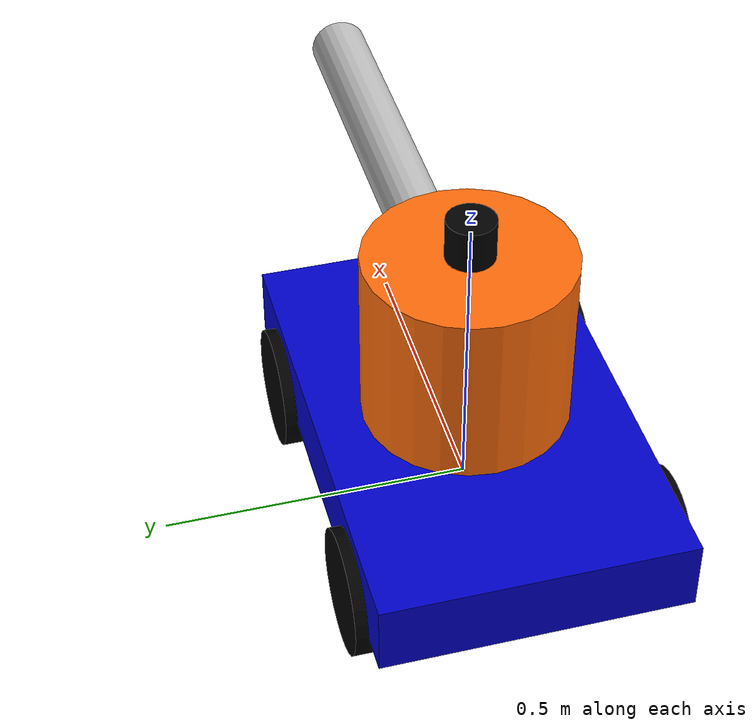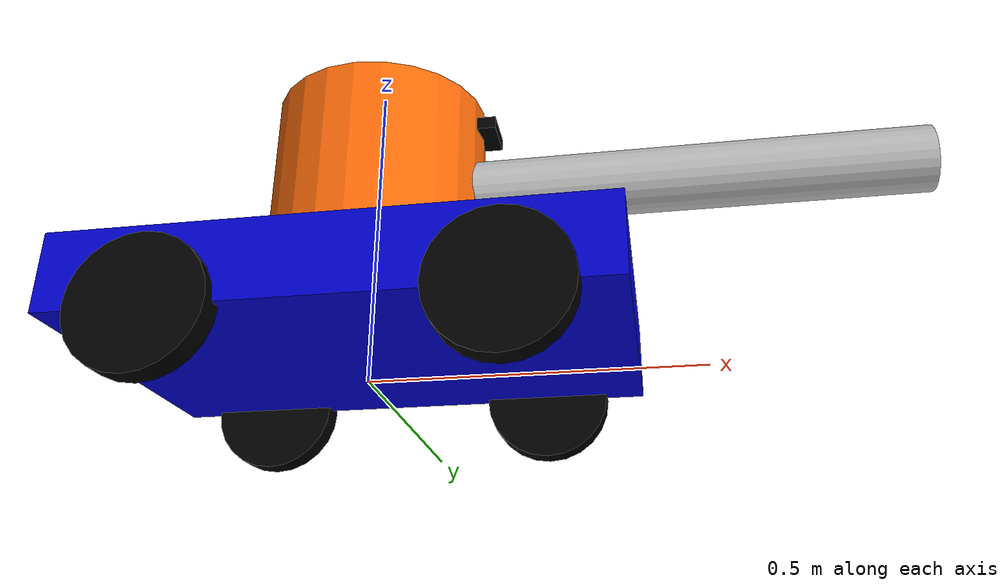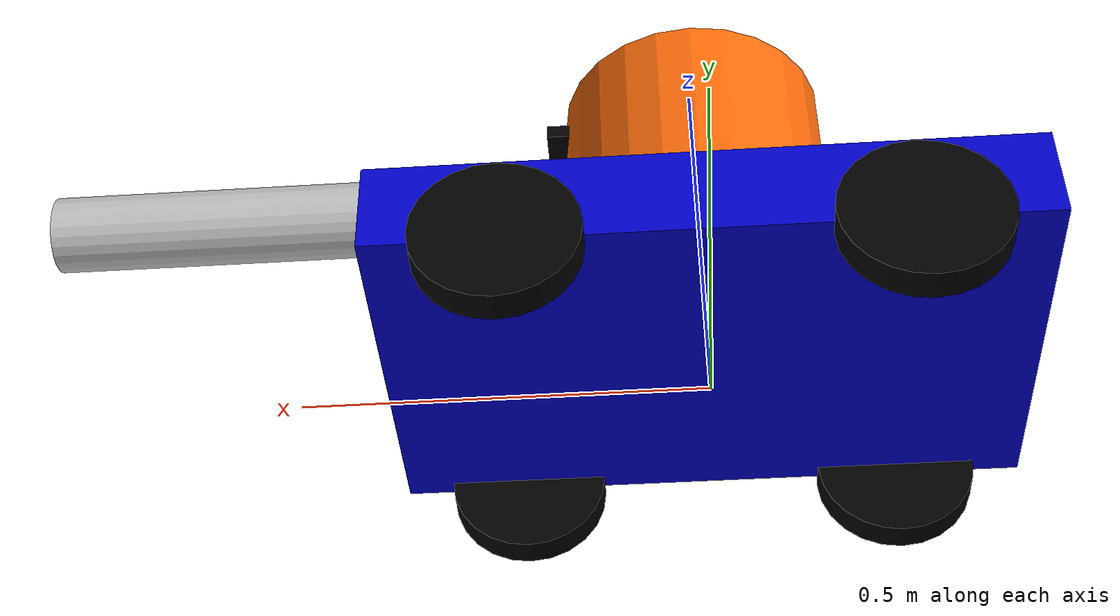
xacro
<?xml version="1.0"?>
<robot name="mbot" xmlns:xacro="http://www.ros.org/wiki/xacro">

  <xacro:include filename="$(find my_robot_gazebo)/urdf/inertia_matrix.xacro" />
  <xacro:include filename="$(find my_robot_gazebo)/urdf/robot_base_gazebo.xacro" />
  <xacro:include filename="$(find my_robot_gazebo)/urdf/camere.xacro" />
  <xacro:include filename="$(find my_robot_gazebo)/urdf/lidar.xacro" />
  <xacro:include filename="joint_transmission.xacro" />
  <xacro:include filename="robot_controller.xacro" />
</robot>

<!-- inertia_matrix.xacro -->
<robot name="inertia_matrix" xmlns:xacro="http://wiki.ros.org/xacro">
  <!-- Macro for inertia matrix -->
  <xacro:macro name="sphere_inertial_matrix" params="m r">
    <inertial>
      <mass value="${m}" />
      <inertia ixx="${2*m*r*r/5}" ixy="0" ixz="0" iyy="${2*m*r*r/5}" iyz="0" izz="${2*m*r*r/5}" />
    </inertial>
  </xacro:macro>

  <xacro:macro name="cylinder_inertial_matrix" params="m r h">
    <inertial>
      <mass value="${m}" />
      <inertia ixx="${m*(3*r*r+h*h)/12}" ixy="0" ixz="0" iyy="${m*(3*r*r+h*h)/12}" iyz="0" izz="${m*r*r/2}" />
    </inertial>
  </xacro:macro>

  <xacro:macro name="Box_inertial_matrix" params="m l w h">
    <inertial>
      <mass value="${m}" />
      <inertia ixx="${m*(h*h + l*l)/12}" ixy="0" ixz="0" iyy="${m*(w*w + l*l)/12}" iyz="0" izz="${m*(w*w + h*h)/12}" />
    </inertial>
  </xacro:macro>
</robot>

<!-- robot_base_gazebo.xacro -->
<robot name="my_robot" xmlns:xacro="http://www.ros.org/wiki/xacro">
  <!-- PROPERTY LIST -->
  <xacro:property name="M_PI" value="3.1415926" />
  <xacro:property name="base_footprint_radius" value="0.001" />

  <xacro:property name="base_length" value="0.8" />
  <xacro:property name="base_width" value="0.5" />
  <xacro:property name="base_height" value="0.12" />
  <xacro:property name="base_mass" value="1" />

  <xacro:property name="wheel_mass" value="0.2" />
  <xacro:property name="wheel_radius" value="0.1" />
  <xacro:property name="wheel_length" value="0.04" />
  <xacro:property name="wheel_joint_x" value="${base_length/2*0.6}" />
  <xacro:property name="wheel_joint_y" value="${base_width/2}" />
  <xacro:property name="wheel_joint_z" value="-${base_height/2}" />

  <xacro:property name="tank_body_mass" value="1" />
  <xacro:property name="tank_body_radius" value="0.17" />
  <xacro:property name="tank_body_length" value="0.3" />

  <xacro:property name="cannon_radius" value="0.05" />
  <xacro:property name="cannon_length" value="0.7" />
  <xacro:property name="cannon_mass" value="0.7" />
  <xacro:property name="cannon_offset_x" value="0.5" />

  <!-- Defining the colors used in this robot -->
  <material name="black">
    <color rgba="0.0 0.0 0.0 1.0" />
  </material>
  <material name="blue">
    <color rgba="0.0 0.0 0.8 1.0" />
  </material>
  <material name="green">
    <color rgba="0.0 1.0 0.0 1.0" />
  </material>
  <material name="grey">
    <color rgba="0.2 0.2 0.2 1.0" />
  </material>
  <material name="orange">
    <color rgba="${255/255} ${108/255} ${10/255} 1.0" />
  </material>
  <material name="brown">
    <color rgba="${205/255} ${127/255} ${50/255} 1.0" />
  </material>
  <material name="red">
    <color rgba="0.8 0.0 0.0 1.0" />
  </material>
  <material name="white">
    <color rgba="1.0 1.0 1.0 1.0" />
  </material>
  <material name="silver">
    <color rgba="0.75 0.75 0.75 1" />
  </material>

  <link name="base_footprint">
    <visual name="base_footprint">
      <origin xyz="0.0 0.0 0.0" rpy="0.0 0.0 0.0" />
      <geometry>
        <sphere radius="${base_footprint_radius}" />
      </geometry>
    </visual>
  </link>
  <gazebo reference="base_footprint">
    <turnGravityOff>false</turnGravityOff>
  </gazebo>

  <joint name="base_footprint_joint" type="fixed">
    <parent link="base_footprint" />
    <child link="base_link" />
    <origin xyz="0.0 0.0 ${base_height*0.8}" rpy="0.0 0.0 0.0" />
  </joint>

  <link name="base_link">
    <visual>
      <origin xyz="0.0 0.0 0.0" rpy="0.0 0.0 0.0" />
      <geometry>
        <box size="${base_length} ${base_width} ${base_height}" />
      </geometry>
      <material name="blue" />
    </visual>
    <collision>
      <origin xyz="0.0 0.0 0.0" rpy="0.0 0.0 0.0" />
      <geometry>
        <box size="${base_length} ${base_width} ${base_height}" />
      </geometry>
    </collision>
    <xacro:Box_inertial_matrix m="${base_mass}" l="${base_length}" w="${base_width}" h="${base_height}" />
  </link>

  <gazebo reference="base_link">
    <material>Gazebo/Blue</material>
  </gazebo>

  <!-- Macro for robot wheel -->
  <xacro:macro name="wheels" params="prefix reflect1 reflect2">
    <joint name="${prefix}_wheel_joint" type="continuous">
      <origin xyz="${reflect1*wheel_joint_x} ${reflect2*wheel_joint_y} ${wheel_joint_z}" rpy="0.0 0.0 0.0" />
      <parent link="base_link" />
      <child link="${prefix}_wheel_link" />
      <axis xyz="0.0 1.0 0.0" />
    </joint>

    <link name="${prefix}_wheel_link">
      <visual>
        <origin xyz="0.0 0.0 0.0" rpy="${M_PI/2} 0.0 0.0" />
        <geometry>
          <cylinder radius="${wheel_radius}" length="${wheel_length}" />
        </geometry>
        <material name="black" />
      </visual>
      <collision>
        <origin xyz="0.0 0.0 0.0" rpy="${M_PI/2} 0.0 0.0" />
        <geometry>
          <cylinder radius="${wheel_radius}" length="${wheel_length}" />
        </geometry>
      </collision>
      <xacro:cylinder_inertial_matrix m="${wheel_mass}" r="${wheel_radius}" h="${wheel_length}" />
    </link>

    <gazebo reference="${prefix}_wheel_link">
      <material>Gazebo/Black</material>
    </gazebo>

  </xacro:macro>

  <xacro:wheels prefix="left_front" reflect1="1" reflect2="1" />
  <xacro:wheels prefix="left_back" reflect1="-1" reflect2="1" />
  <xacro:wheels prefix="right_front" reflect1="1" reflect2="-1" />
  <xacro:wheels prefix="right_back" reflect1="-1" reflect2="-1" />

  <!-- tank_body -->
  <link name="tank_body">
    <visual>
      <origin xyz=" 0 0 0.0" rpy=" 0 0 0" />
      <geometry>
        <cylinder radius="${tank_body_radius}" length="${tank_body_length}" />
      </geometry>
      <material name="orange" />
    </visual>
    <collision>
      <origin xyz="0.0 0.0 0.0" rpy="0.0 0.0 0.0" />
      <geometry>
        <cylinder radius="${tank_body_radius}" length="${tank_body_length}" />
      </geometry>
    </collision>
    <xacro:cylinder_inertial_matrix m="${tank_body_mass}" r="${tank_body_radius}" h="${tank_body_length}" />
  </link>

  <joint name=" body_base_joint" type="fixed">
    <origin xyz=" 0.0 0.0 ${base_height/2+tank_body_length/2}" rpy=" 0.0 0.0 0.0" />
    <parent link="base_link" />
    <child link="tank_body" />
  </joint>

  <gazebo reference="tank_body">
    <material>Gazebo/Orange</material>
  </gazebo>

  <!-- cannon -->
  <joint name="canon_body_joint" type="fixed">
    <origin xyz="${cannon_offset_x} 0.0 0.0" rpy=" 0.0 ${M_PI/2} 0.0" />
    <parent link="tank_body" />
    <child link="cannon" />
  </joint>

  <link name="cannon">
    <visual>
      <origin xyz="0 0 0" rpy=" 0 0 0" />
      <geometry>
        <cylinder radius="${cannon_radius}" length="${cannon_length}" />
      </geometry>
      <material name="silver" />
    </visual>
    <collision>
      <origin xyz="0.0 0.0 0.0" rpy="0.0 0.0 0.0" />
      <geometry>
        <cylinder radius="${cannon_radius}" length="${cannon_length}" />
      </geometry>
    </collision>
    <xacro:cylinder_inertial_matrix m="${cannon_mass}" r="${cannon_radius}" h="${cannon_length}" />
  </link>

  <gazebo reference="cannon">
    <material>Gazebo/Silver</material>
  </gazebo>

</robot>

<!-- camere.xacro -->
<robot name="camera" xmlns:xacro="http://www.ros.org/wiki/xacro">

  <!-- camere property -->
  <xacro:property name="camera_length" value="0.05" /> <!-- 摄像头长度(x) -->
  <xacro:property name="camera_width" value="0.07" /> <!-- 摄像头宽度(y) -->
  <xacro:property name="camera_height" value="0.02" /> <!-- 摄像头高度(z) -->
  <xacro:property name="camera_x" value="0.17" /> <!-- 摄像头安装的x坐标 -->
  <xacro:property name="camera_y" value="0.0" /> <!-- 摄像头安装的y坐标 -->
  <xacro:property name="camera_z" value="${tank_body_length/2 + camera_height/2 - 0.05}" />
  <xacro:property name="camera_mass" value="0.01" /> <!-- 摄像头质量 -->

  <link name="camera">
    <visual>
      <origin xyz="0.0 0.0 0.0" rpy="0.0 0.0 0.0" />
      <geometry>
        <box size="${camera_length} ${camera_width} ${camera_height}" />
      </geometry>
      <material name="black" />
    </visual>
    <collision>
      <origin xyz="0.0 0.0 0.0" rpy="0.0 0.0 0.0" />
      <geometry>
        <box size="${camera_length} ${camera_width} ${camera_height}" />
      </geometry>
    </collision>
    <xacro:Box_inertial_matrix m="${camera_mass}" l="${camera_length}" w="${camera_width}" h="${camera_height}" />
  </link>

  <joint name="camera_joint" type="fixed">
    <origin xyz="${camera_x} ${camera_y} ${camera_z}" rpy="0 0.0 0.0" />
    <parent link="tank_body" />
    <child link="camera" />
  </joint>

  <gazebo reference="camera">
    <material>Gazebo/Black</material>
  </gazebo>

  <!-- 配置摄像头传感器信息 -->
  <gazebo reference="camera">
    <!-- 类型设置为 camara -->
    <sensor type="camera" name="camera_node">
      <update_rate>30.0</update_rate> <!-- 更新频率 -->
      <!-- 摄像头基本信息设置 -->
      <camera name="head">
        <horizontal_fov>1.3962634</horizontal_fov>
        <image>
          <width>1280</width>
          <height>720</height>
          <format>R8G8B8</format>
        </image>
        <clip>
          <near>0.02</near>
          <far>300</far>
        </clip>
        <noise>
          <type>gaussian</type>
          <mean>0.0</mean>
          <stddev>0.007</stddev>
        </noise>
      </camera>
      <!-- 核心插件 -->
      <plugin name="gazebo_camera" filename="libgazebo_ros_camera.so">
        <alwaysOn>true</alwaysOn>
        <updateRate>0.0</updateRate>
        <cameraName>/camera</cameraName>
        <imageTopicName>image_raw</imageTopicName>
        <cameraInfoTopicName>camera_info</cameraInfoTopicName>
        <frameName>camera</frameName>
        <hackBaseline>0.07</hackBaseline>
        <distortionK1>0.0</distortionK1>
        <distortionK2>0.0</distortionK2>
        <distortionK3>0.0</distortionK3>
        <distortionT1>0.0</distortionT1>
        <distortionT2>0.0</distortionT2>
      </plugin>
    </sensor>
  </gazebo>

</robot>

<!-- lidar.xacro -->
<robot xmlns:xacro="http://www.ros.org/wiki/xacro" name="my_lidar">

  <!-- Lidar property -->
  <xacro:property name="laser_m" value="0.1" /> <!-- 雷达质量 -->
  <xacro:property name="laser_length" value="0.07" /> <!-- 雷达长度 -->
  <xacro:property name="laser_radius" value="0.04" /> <!-- 雷达半径 -->
  <xacro:property name="laser_x" value="0.0" /> <!-- 雷达安装的x坐标 -->
  <xacro:property name="laser_y" value="0.0" /> <!-- 雷达安装的y坐标 -->
  <xacro:property name="laser_z" value="${tank_body_length / 2 + laser_length / 2}" /> <!-- 雷达安装的z坐标:支架高度 / 2 + 雷达高度 / 2  -->

  <link name="laser">
    <visual>
      <origin xyz="0.0 0.0 0.0" rpy="0.0 0.0 0.0" />
      <geometry>
        <cylinder radius="${laser_radius}" length="${laser_length}" />
      </geometry>
      <material name="black" />
    </visual>
    <collision>
      <origin xyz="0.0 0.0 0.0" rpy="0.0 0.0 0.0" />
      <geometry>
        <cylinder radius="${laser_radius}" length="${laser_length}" />
      </geometry>
    </collision>
    <xacro:cylinder_inertial_matrix m="${laser_m}" r="${laser_radius}" h="${laser_length}" />
  </link>

  <joint name="laser_joint" type="fixed">
    <origin xyz="${laser_x} ${laser_y} ${laser_z}" rpy="0.0 0.0 0.0" />
    <parent link="tank_body" />
    <child link="laser" />
  </joint>

  <gazebo reference="laser">
    <material>Gazebo/Black</material>
  </gazebo>

  <!-- 配置雷达传感器信息 -->
  <gazebo reference="laser">
    <sensor type="ray" name="rplidar">
      <pose>0 0 0 0 0 0</pose>
      <visualize>true</visualize>
      <update_rate>5.5</update_rate>
      <ray>
        <scan>
          <horizontal>
            <samples>360</samples>
            <resolution>1</resolution>
            <min_angle>-3</min_angle>
            <max_angle>3</max_angle>
          </horizontal>
        </scan>
        <range>
          <min>0.10</min>
          <max>30.0</max>
          <resolution>0.01</resolution>
        </range>
        <noise>
          <type>gaussian</type>
          <mean>0.0</mean>
          <stddev>0.01</stddev>
        </noise>
      </ray>
      <plugin name="gazebo_rplidar" filename="libgazebo_ros_laser.so">
        <topicName>/scan</topicName>
        <frameName>laser</frameName>
      </plugin>
    </sensor>
  </gazebo>

</robot>
